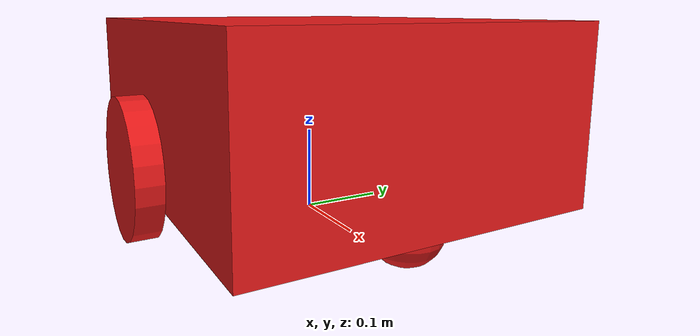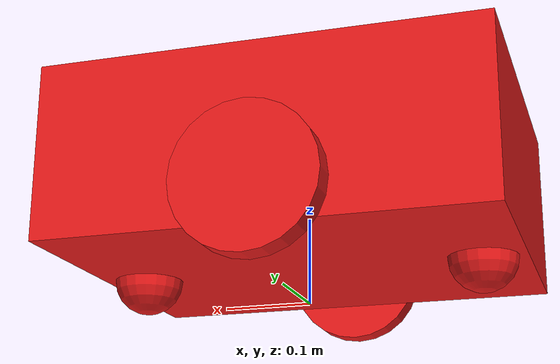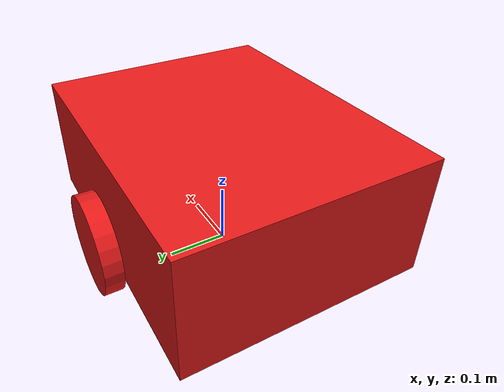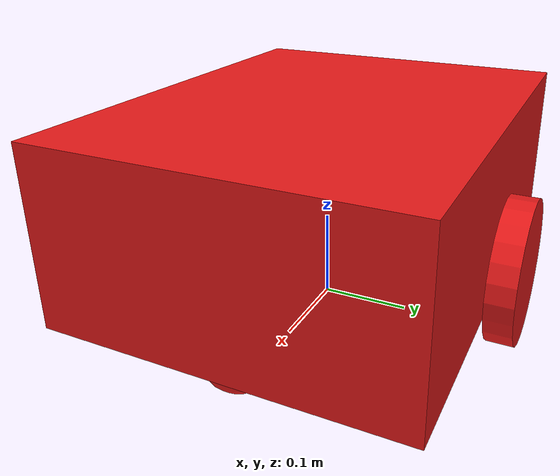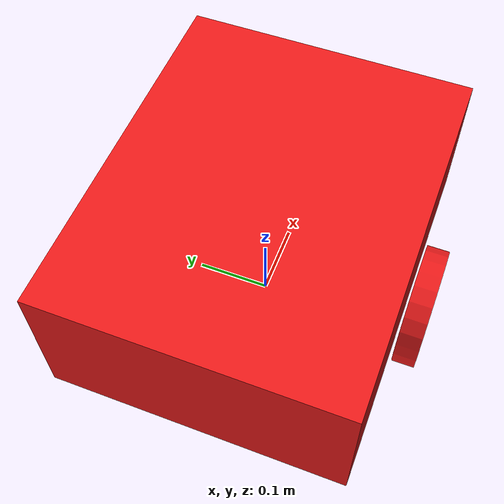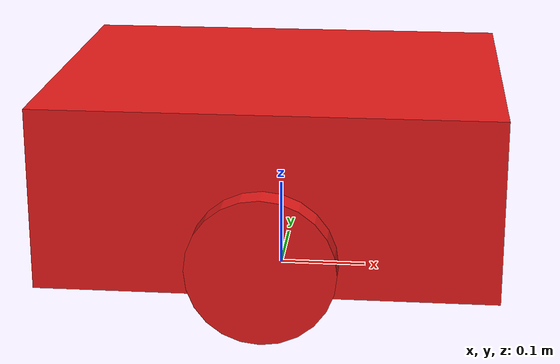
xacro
<?xml version="1.0"?>
<robot name="hospital_robot" xmlns:xacro="http://www.ros.org/wiki/xacro">
  <xacro:include filename="$(find hospital_robot_description)/urdf/base.xacro"/>
  <xacro:include filename="$(find hospital_robot_description)/urdf/wheels.xacro"/>
  <xacro:include filename="$(find hospital_robot_description)/urdf/lidar.xacro"/>

  <xacro:hospital_base prefix=""/>
  <xacro:hospital_wheels prefix=""/>
  <xacro:hospital_lidar prefix=""/>

  <link name="base_footprint"/>
  <joint name="base_footprint_joint" type="fixed">
    <origin xyz="0 0 0.0" rpy="0 0 0"/>
    <parent link="base_footprint"/>
    <child link="base_link"/>
  </joint>

  <gazebo reference="base_link">
    <material>Gazebo/Red</material>
  </gazebo>
  <gazebo reference="left_wheel_link">
    <material>Gazebo/Red</material>
  </gazebo>
  <gazebo reference="right_wheel_link">
    <material>Gazebo/Red</material>
  </gazebo>
  <gazebo reference="front_caster_link">
    <material>Gazebo/Red</material>
  </gazebo>
  <gazebo reference="rear_caster_link">
    <material>Gazebo/Red</material>
  </gazebo>
  <gazebo reference="lidar_link">
    <material>Gazebo/Red</material>
  </gazebo>

  <gazebo>
    <plugin name="gazebo_ros_planar_move" filename="libgazebo_ros_planar_move.so">
      <ros>
        <namespace>/</namespace>
        <remapping>cmd_vel:=/cmd_vel</remapping>
        <remapping>odom:=/odom</remapping>
      </ros>
      <commandTopic>/cmd_vel</commandTopic>
      <odometryTopic>/odom</odometryTopic>
      <odometryFrame>odom</odometryFrame>
      <robotBaseFrame>base_footprint</robotBaseFrame>
      <publishTF>true</publishTF>
      <odometryRate>50.0</odometryRate>
    </plugin>
  </gazebo>

  <gazebo reference="lidar_link">
    <sensor name="lidar_sensor" type="ray">
      <pose>0 0 0 0 0 0</pose>
      <always_on>true</always_on>
      <visualize>false</visualize>
      <update_rate>8</update_rate>
      <ray>
        <scan>
          <horizontal>
            <samples>270</samples>
            <resolution>1</resolution>
            <min_angle>-3.14159</min_angle>
            <max_angle>3.14159</max_angle>
          </horizontal>
        </scan>
        <range>
          <min>0.12</min>
          <max>8.0</max>
          <resolution>0.01</resolution>
        </range>
      </ray>
      <plugin name="gazebo_ros_ray_sensor" filename="libgazebo_ros_ray_sensor.so">
        <ros>
          <namespace>/</namespace>
          <remapping>~/out:=/scan</remapping>
        </ros>
        <frame_name>lidar_link</frame_name>
        <output_type>sensor_msgs/LaserScan</output_type>
      </plugin>
    </sensor>
  </gazebo>
</robot>

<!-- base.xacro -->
<robot xmlns:xacro="http://www.ros.org/wiki/xacro">
  <xacro:macro name="hospital_base" params="prefix">
    <link name="${prefix}base_link">
      <inertial>
        <origin xyz="0 0 0.14" rpy="0 0 0"/>
        <mass value="10.0"/>
        <inertia ixx="0.17" ixy="0.0" ixz="0.0" iyy="0.24" iyz="0.0" izz="0.34"/>
      </inertial>
      <visual>
        <origin xyz="0 0 0.14" rpy="0 0 0"/>
        <geometry>
          <box size="0.5 0.4 0.2"/>
        </geometry>
        <material name="robot_red">
          <color rgba="0.9 0.1 0.1 1.0"/>
        </material>
      </visual>
      <collision>
        <origin xyz="0 0 0.14" rpy="0 0 0"/>
        <geometry>
          <box size="0.5 0.4 0.2"/>
        </geometry>
      </collision>
    </link>

    <link name="${prefix}front_caster_link">
      <inertial>
        <origin xyz="0 0 0" rpy="0 0 0"/>
        <mass value="0.3"/>
        <inertia ixx="0.0002" ixy="0.0" ixz="0.0" iyy="0.0002" iyz="0.0" izz="0.0002"/>
      </inertial>
      <visual>
        <origin xyz="0 0 0" rpy="0 0 0"/>
        <geometry>
          <sphere radius="0.04"/>
        </geometry>
        <material name="robot_red">
          <color rgba="0.9 0.1 0.1 1.0"/>
        </material>
      </visual>
      <collision>
        <origin xyz="0 0 0" rpy="0 0 0"/>
        <geometry>
          <sphere radius="0.04"/>
        </geometry>
      </collision>
    </link>

    <joint name="${prefix}front_caster_joint" type="fixed">
      <origin xyz="0.2 0.0 0.04" rpy="0 0 0"/>
      <parent link="${prefix}base_link"/>
      <child link="${prefix}front_caster_link"/>
    </joint>

    <link name="${prefix}rear_caster_link">
      <inertial>
        <origin xyz="0 0 0" rpy="0 0 0"/>
        <mass value="0.3"/>
        <inertia ixx="0.0002" ixy="0.0" ixz="0.0" iyy="0.0002" iyz="0.0" izz="0.0002"/>
      </inertial>
      <visual>
        <origin xyz="0 0 0" rpy="0 0 0"/>
        <geometry>
          <sphere radius="0.04"/>
        </geometry>
        <material name="robot_red">
          <color rgba="0.9 0.1 0.1 1.0"/>
        </material>
      </visual>
      <collision>
        <origin xyz="0 0 0" rpy="0 0 0"/>
        <geometry>
          <sphere radius="0.04"/>
        </geometry>
      </collision>
    </link>

    <joint name="${prefix}rear_caster_joint" type="fixed">
      <origin xyz="-0.2 0.0 0.04" rpy="0 0 0"/>
      <parent link="${prefix}base_link"/>
      <child link="${prefix}rear_caster_link"/>
    </joint>
  </xacro:macro>
</robot>

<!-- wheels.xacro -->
<robot xmlns:xacro="http://www.ros.org/wiki/xacro">
  <xacro:macro name="hospital_wheels" params="prefix">
    <xacro:property name="wheel_radius" value="0.08"/>
    <xacro:property name="wheel_thickness" value="0.03"/>
    <xacro:property name="wheel_y_offset" value="0.22"/>

    <link name="${prefix}left_wheel_link">
      <inertial>
        <origin xyz="0 0 0" rpy="0 0 0"/>
        <mass value="1.0"/>
        <inertia ixx="0.003" ixy="0.0" ixz="0.0" iyy="0.003" iyz="0.0" izz="0.002"/>
      </inertial>
      <visual>
        <origin xyz="0 0 0" rpy="1.5708 0 0"/>
        <geometry>
          <cylinder radius="${wheel_radius}" length="${wheel_thickness}"/>
        </geometry>
        <material name="robot_red">
          <color rgba="0.9 0.1 0.1 1.0"/>
        </material>
      </visual>
      <collision>
        <origin xyz="0 0 0" rpy="1.5708 0 0"/>
        <geometry>
          <cylinder radius="${wheel_radius}" length="${wheel_thickness}"/>
        </geometry>
      </collision>
    </link>

    <link name="${prefix}right_wheel_link">
      <inertial>
        <origin xyz="0 0 0" rpy="0 0 0"/>
        <mass value="1.0"/>
        <inertia ixx="0.003" ixy="0.0" ixz="0.0" iyy="0.003" iyz="0.0" izz="0.002"/>
      </inertial>
      <visual>
        <origin xyz="0 0 0" rpy="1.5708 0 0"/>
        <geometry>
          <cylinder radius="${wheel_radius}" length="${wheel_thickness}"/>
        </geometry>
        <material name="robot_red">
          <color rgba="0.9 0.1 0.1 1.0"/>
        </material>
      </visual>
      <collision>
        <origin xyz="0 0 0" rpy="1.5708 0 0"/>
        <geometry>
          <cylinder radius="${wheel_radius}" length="${wheel_thickness}"/>
        </geometry>
      </collision>
    </link>

    <joint name="${prefix}left_wheel_joint" type="continuous">
      <origin xyz="0.0 ${wheel_y_offset} ${wheel_radius}" rpy="0 0 0"/>
      <parent link="${prefix}base_link"/>
      <child link="${prefix}left_wheel_link"/>
      <axis xyz="0 1 0"/>
    </joint>

    <joint name="${prefix}right_wheel_joint" type="continuous">
      <origin xyz="0.0 -${wheel_y_offset} ${wheel_radius}" rpy="0 0 0"/>
      <parent link="${prefix}base_link"/>
      <child link="${prefix}right_wheel_link"/>
      <axis xyz="0 1 0"/>
    </joint>
  </xacro:macro>
</robot>

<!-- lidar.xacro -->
<robot xmlns:xacro="http://www.ros.org/wiki/xacro">
  <xacro:macro name="hospital_lidar" params="prefix">
    <link name="${prefix}lidar_link">
      <inertial>
        <origin xyz="0 0 0" rpy="0 0 0"/>
        <mass value="0.3"/>
        <inertia ixx="0.0004" ixy="0.0" ixz="0.0" iyy="0.0004" iyz="0.0" izz="0.0004"/>
      </inertial>
      <visual>
        <origin xyz="0 0 0" rpy="0 0 0"/>
        <geometry>
          <cylinder radius="0.05" length="0.06"/>
        </geometry>
        <material name="robot_red">
          <color rgba="0.9 0.1 0.1 1.0"/>
        </material>
      </visual>
      <collision>
        <origin xyz="0 0 0" rpy="0 0 0"/>
        <geometry>
          <cylinder radius="0.05" length="0.06"/>
        </geometry>
      </collision>
    </link>

    <joint name="${prefix}lidar_joint" type="fixed">
      <origin xyz="0.18 0.0 0.20" rpy="0 0 0"/>
      <parent link="${prefix}base_link"/>
      <child link="${prefix}lidar_link"/>
    </joint>
  </xacro:macro>
</robot>
